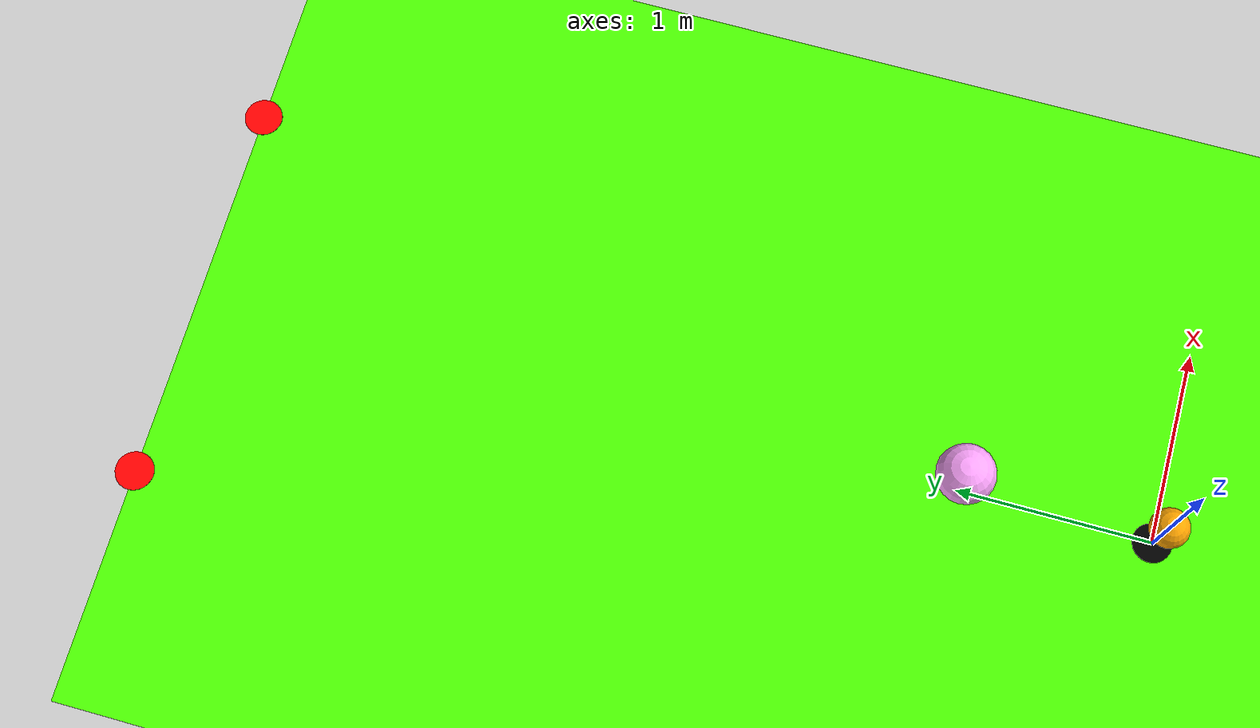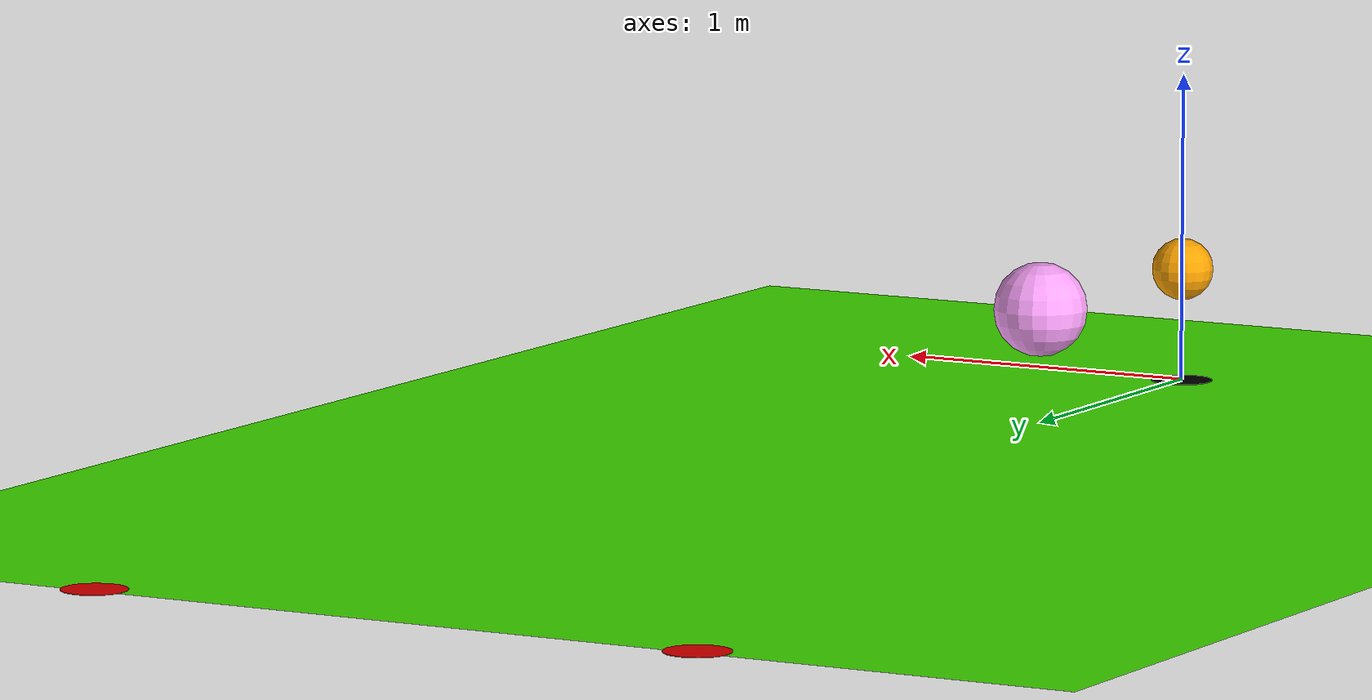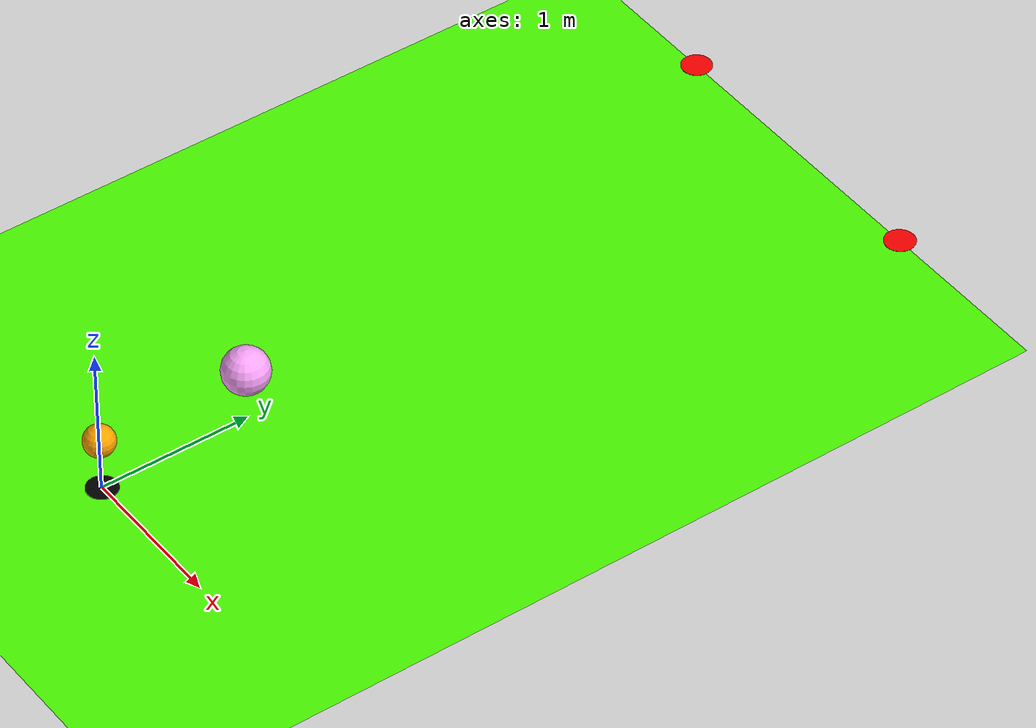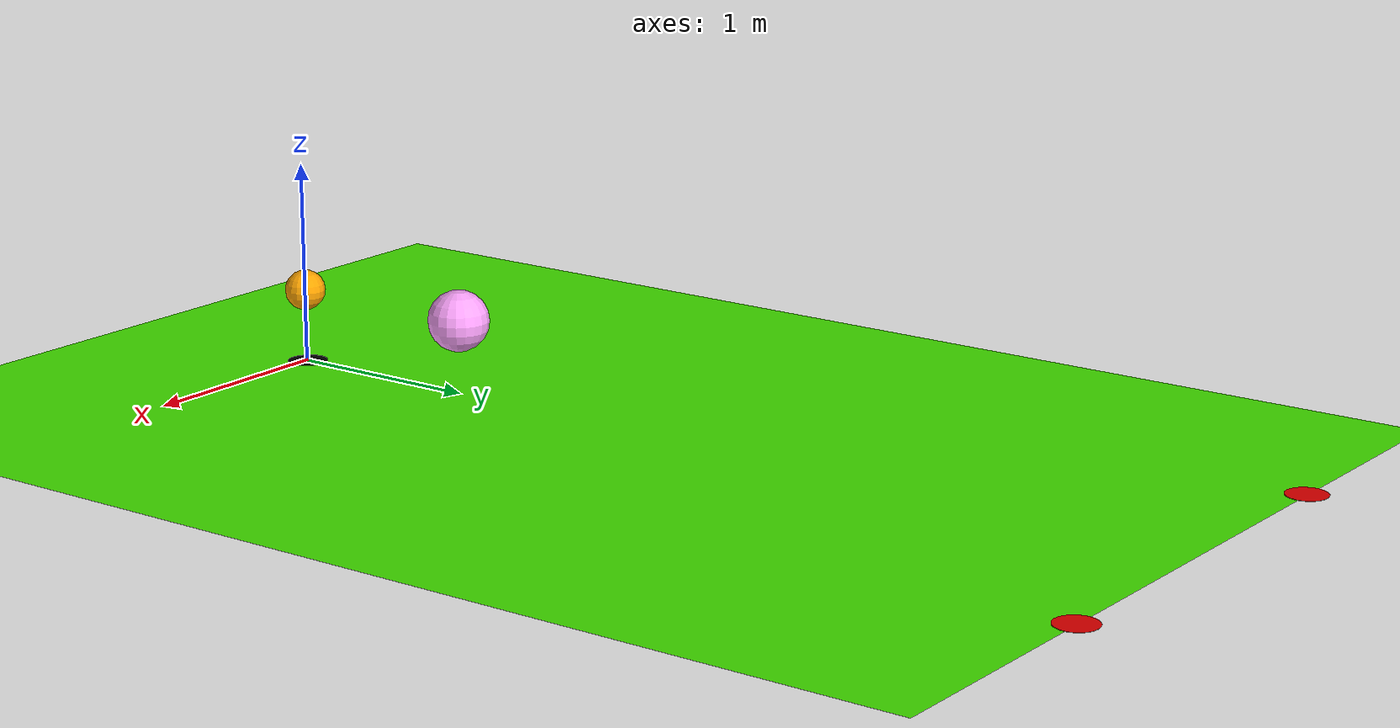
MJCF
<mujoco>
<option gravity="0 0 -9.81" timestep="0.01" iterations="10"/>
    <default>
        <geom condim="6" friction="1 1 1"/>
    </default>
    <worldbody>
        <body name="agent" pos="0 0 0.365">
            <geom name="sphero1" type="sphere" size="0.1" rgba="1 0.647 0 1" mass="1" friction="1"/>
            <joint type="free"/>
        </body>
        <body name="point" pos="0 0 0">
            <geom name="random_point" type="cylinder" size="0.1 0.001" rgba="0 0 0 1" mass="1" friction="1"/>
            <joint type="free"/>
        </body>
        <body name="goalp1" pos="1 5 0">
            <geom name="goalp1" type="cylinder" size="0.1 0.001" rgba="1 0 0 1" mass="1" friction="1"/>
            <joint type="free"/>
        </body>
        <body name="goalp2" pos="-1 5 0">
            <geom name="goalp2" type="cylinder" size="0.1 0.001" rgba="1 0 0 1" mass="1" friction="1"/>
            <joint type="free"/>
        </body>
        <body name="ball" pos="0 1 0.365">
            <geom name="ball" type="sphere" size="0.15" rgba="1 0.647 1 1" mass="1" friction="1"/>
            <joint type="free"/>
        </body>
        <geom name="ground" type="plane" pos="0 0 0" size="5 5 0.1" rgba="0.3 1 0 1" friction="3"/>
    </worldbody>
</mujoco>
